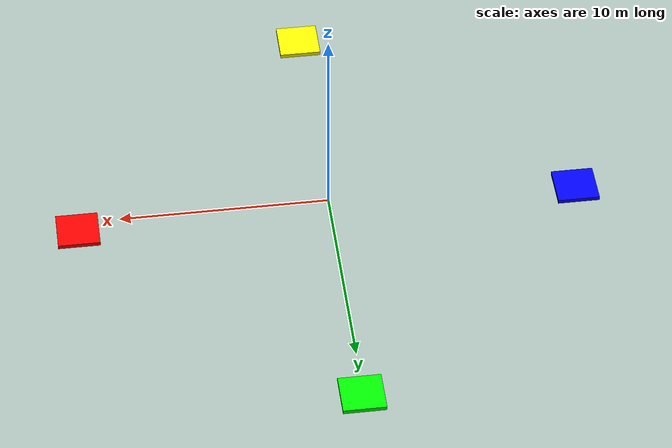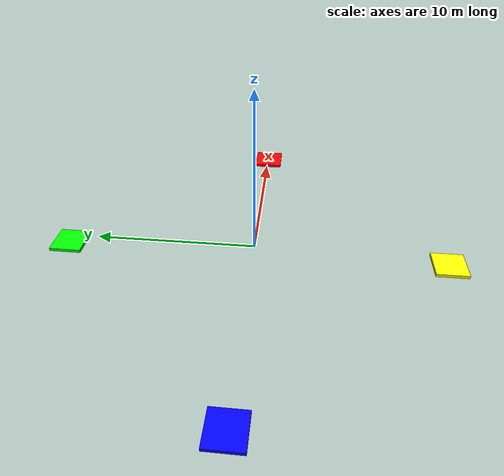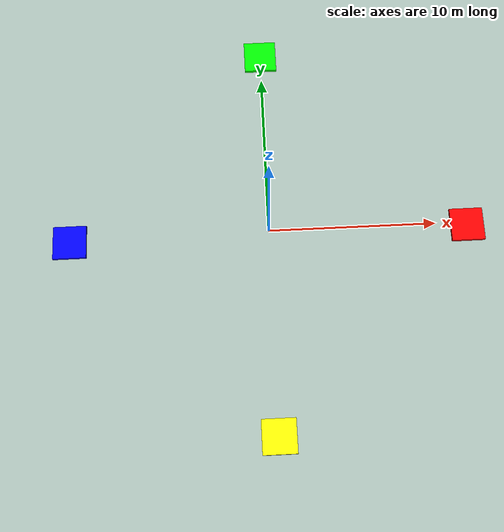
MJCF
<mujoco model="polarization_compass_scene">
    <include file="cambrian/models/settings.xml" />
    <option integrator="implicitfast" timestep="0.02">
        <flag frictionloss="disable" />
    </option>
    <visual>
        <headlight active="0" />
        <map znear="0.0001" zfar="50" />
        <scale frustum="20" />
        <!-- Sky blue background - agent sees this as "sky" -->
        <rgba camera="0.5 0.7 1.0 1" />
        <quality offsamples="0"/>
    </visual>
    <asset>
        <!-- Featureless gray floor - no visual landmarks -->
        <material name="flat_floor_mat" rgba="0.4 0.4 0.4 1.0" shininess="0.0" specular="0.0" />
        <!-- Builtin gradient skybox for testing -->
        <texture name="skybox" type="skybox" builtin="gradient" rgb1="0.4 0.6 0.8" rgb2="0.1 0.1 0.2" width="512" height="512"/>
    </asset>
    <worldbody>
        <!-- Top-down camera aligned with world axes: +X=right, +Y=up on screen -->
        <camera name="top_down" pos="0 0 25" xyaxes="1 0 0 0 1 0" mode="fixed"/>

        <!-- Large featureless floor plane -->
        <geom name="floor"
              type="plane"
              pos="0 0 0"
              size="50 50 0.1"
              material="flat_floor_mat"
              contype="1"
              conaffinity="1"/>

        <!-- Sun light - direction will be randomized by environment -->
        <body name="sun_body" pos="20 0 20">
            <light name="sun_light"
                   dir="-1 0 -1"
                   pos="0 0 0"
                   cutoff="90"
                   exponent="1"
                   diffuse="1.0 0.95 0.8"
                   ambient="0.4 0.4 0.45"
                   specular="0.3 0.3 0.3"
                   directional="true"/>
        </body>

        <!-- Direction markers (colored boxes at edge of platform) -->
        <!-- East (+X) = Red -->
        <geom name="marker_east" type="box" pos="12 0 -0.5" size="1 1 0.1" rgba="1 0 0 1"/>
        <!-- West (-X) = Blue -->
        <geom name="marker_west" type="box" pos="-12 0 -0.5" size="1 1 0.1" rgba="0 0 1 1"/>
        <!-- North (+Y) = Green -->
        <geom name="marker_north" type="box" pos="0 12 -0.5" size="1 1 0.1" rgba="0 1 0 1"/>
        <!-- South (-Y) = Yellow -->
        <geom name="marker_south" type="box" pos="0 -12 -0.5" size="1 1 0.1" rgba="1 1 0 1"/>

        <!-- Additional ambient fill light so scene is never too dark -->
        <light name="fill_light"
               pos="0 0 10"
               dir="0 0 -1"
               diffuse="0.3 0.3 0.3"
               ambient="0.3 0.3 0.3"
               specular="0.0 0.0 0.0"
               directional="true"/>
    </worldbody>
</mujoco>

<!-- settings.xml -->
<mujoco>
    <compiler assetdir="cambrian/models/assets" angle="degree" coordinate="local" inertiafromgeom="true" />
</mujoco>
